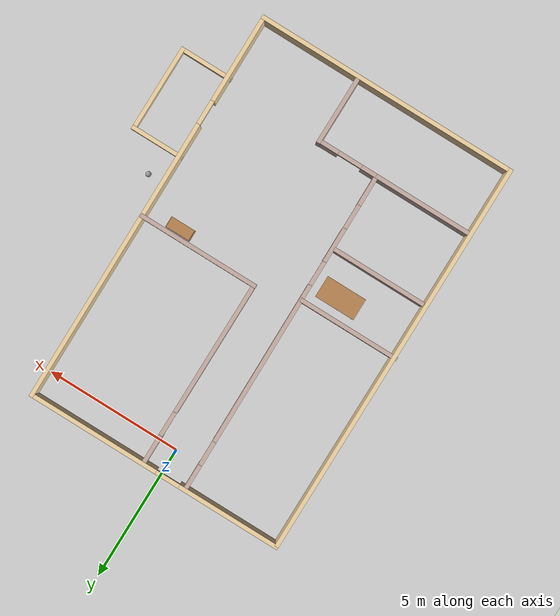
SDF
<sdf version="1.6">
 <world name="default">
  <model name="ground_plane">
   <static>1</static>
   <link name="link">
    <collision name="collision">
     <geometry><plane><normal>0 0 1</normal><size>100 100</size></plane></geometry>
     <surface>
      <contact><collide_bitmask>65535</collide_bitmask></contact>
      <friction><ode><mu>100</mu><mu2>50</mu2></ode></friction>
     </surface>
    </collision>
    <visual name="visual">
     <cast_shadows>0</cast_shadows>
     <geometry><plane><normal>0 0 1</normal><size>100 100</size></plane></geometry>
     <material>
      <script><uri>file://media/materials/scripts/gazebo.material</uri><name>Gazebo/Grey</name></script>
     </material>
    </visual>
   </link>
  </model>
  <model name="Building">
   <pose>1.19328 -6.44935 0 0 -0 0</pose>
   <link name="Wall_0">
    <collision name="Wall_0_Collision">
     <geometry><box><size>14.75 0.15 2.5</size></box></geometry>
     <pose>0 0 1.25 0 -0 0</pose>
    </collision>
    <visual name="Wall_0_Visual">
     <pose>0 0 1.25 0 -0 0</pose>
     <geometry><box><size>14.75 0.15 2.5</size></box></geometry>
     <material>
      <script><uri>file://media/materials/scripts/gazebo.material</uri><name>Gazebo/Grey</name></script>
      <ambient>0.921569 0.807843 0.615686 1</ambient>
     </material>
     <meta><layer>0</layer></meta>
    </visual>
    <pose>-5.70481 -0.037911 0 0 0 -1.5708</pose>
   </link>
   <link name="Wall_1">
    <collision name="Wall_1_Collision">
     <geometry><box><size>9.72533 0.15 2.5</size></box></geometry>
     <pose>0 0 1.25 0 -0 0</pose>
    </collision>
    <visual name="Wall_1_Visual">
     <pose>0 0 1.25 0 -0 0</pose>
     <geometry><box><size>9.72533 0.15 2.5</size></box></geometry>
     <material>
      <script><uri>file://media/materials/scripts/gazebo.material</uri><name>Gazebo/Grey</name></script>
      <ambient>0.921569 0.807843 0.615686 1</ambient>
     </material>
     <meta><layer>0</layer></meta>
    </visual>
    <pose>-0.870929 -7.33745 0 0 -0 9.7e-05</pose>
   </link>
   <link name="Wall_10">
    <collision name="Wall_10_Collision">
     <geometry><box><size>3.75 0.15 2.5</size></box></geometry>
     <pose>0 0 1.25 0 -0 0</pose>
    </collision>
    <visual name="Wall_10_Visual">
     <pose>0 0 1.25 0 -0 0</pose>
     <geometry><box><size>3.75 0.15 2.5</size></box></geometry>
     <material>
      <script><uri>file://media/materials/scripts/gazebo.material</uri><name>Gazebo/Grey</name></script>
      <ambient>0.760784 0.662745 0.627451 1</ambient>
     </material>
     <meta><layer>0</layer></meta>
    </visual>
    <pose>-3.88937 -4.84832 0 0 -0 3.14159</pose>
   </link>
   <link name="Wall_14">
    <collision name="Wall_14_Collision">
     <geometry><box><size>2.5 0.15 2.5</size></box></geometry>
     <pose>0 0 1.25 0 -0 0</pose>
    </collision>
    <visual name="Wall_14_Visual">
     <pose>0 0 1.25 0 -0 0</pose>
     <geometry><box><size>2.5 0.15 2.5</size></box></geometry>
     <material>
      <script><uri>file://media/materials/scripts/gazebo.material</uri><name>Gazebo/Grey</name></script>
      <ambient>0.760784 0.662745 0.627451 1</ambient>
     </material>
     <meta><layer>0</layer></meta>
    </visual>
    <pose>0.19415 -6.01042 0 0 0 -1.5708</pose>
   </link>
   <link name="Wall_16">
    <collision name="Wall_16_Collision">
     <geometry><box><size>4.5 0.15 2.5</size></box></geometry>
     <pose>0 0 1.25 0 -0 0</pose>
    </collision>
    <visual name="Wall_16_Visual">
     <pose>0 0 1.25 0 -0 0</pose>
     <geometry><box><size>4.5 0.15 2.5</size></box></geometry>
     <material>
      <script><uri>file://media/materials/scripts/gazebo.material</uri><name>Gazebo/Grey</name></script>
      <ambient>0.760784 0.662745 0.627451 1</ambient>
     </material>
     <meta><layer>0</layer></meta>
    </visual>
    <pose>1.67785 0.374679 0 0 -0 0</pose>
   </link>
   <link name="Wall_18">
    <collision name="Wall_18_Collision">
     <geometry><box><size>3.5 0.15 2.5</size></box></geometry>
     <pose>0 0 1.25 0 -0 0</pose>
    </collision>
    <visual name="Wall_18_Visual">
     <pose>0 0 1.25 0 -0 0</pose>
     <geometry><box><size>3.5 0.15 2.5</size></box></geometry>
     <material>
      <script><uri>file://media/materials/scripts/gazebo.material</uri><name>Gazebo/Grey</name></script>
      <ambient>0.760784 0.662745 0.627451 1</ambient>
     </material>
     <meta><layer>0</layer></meta>
    </visual>
    <pose>-3.86495 -2.05872 0 0 -0 3.14159</pose>
   </link>
   <link name="Wall_20">
    <collision name="Wall_20_Collision">
     <geometry><box><size>3.75 0.15 2.5</size></box></geometry>
     <pose>0 0 1.25 0 -0 0</pose>
    </collision>
    <visual name="Wall_20_Visual">
     <pose>0 0 1.25 0 -0 0</pose>
     <geometry><box><size>3.75 0.15 2.5</size></box></geometry>
     <material>
      <script><uri>file://media/materials/scripts/gazebo.material</uri><name>Gazebo/Grey</name></script>
      <ambient>0.760784 0.662745 0.627451 1</ambient>
     </material>
     <meta><layer>0</layer></meta>
    </visual>
    <pose>-3.93705 -0.048521 0 0 -0 3.14159</pose>
   </link>
   <link name="Wall_22">
    <pose>-0.991697 -4.84832 0 0 -0 0</pose>
    <visual name="Wall_22_Visual_0">
     <pose>-0.794379 0 1.25 0 -0 0</pose>
     <geometry><box><size>0.661242 0.15 2.5</size></box></geometry>
     <material>
      <script><uri>file://media/materials/scripts/gazebo.material</uri><name>Gazebo/Grey</name></script>
      <ambient>0.760784 0.662745 0.627451 1</ambient>
     </material>
     <meta><layer>0</layer></meta>
    </visual>
    <collision name="Wall_22_Collision_0">
     <geometry><box><size>0.661242 0.15 2.5</size></box></geometry>
     <pose>-0.794379 0 1.25 0 -0 0</pose>
    </collision>
    <visual name="Wall_22_Visual_1">
     <pose>0.780621 0 1.25 0 -0 0</pose>
     <geometry><box><size>0.688758 0.15 2.5</size></box></geometry>
     <material>
      <script><uri>file://media/materials/scripts/gazebo.material</uri><name>Gazebo/Grey</name></script>
      <ambient>0.760784 0.662745 0.627451 1</ambient>
     </material>
     <meta><layer>0</layer></meta>
    </visual>
    <collision name="Wall_22_Collision_1">
     <geometry><box><size>0.688758 0.15 2.5</size></box></geometry>
     <pose>0.780621 0 1.25 0 -0 0</pose>
    </collision>
    <visual name="Wall_22_Visual_2">
     <pose>-0.013758 0 2.25 0 -0 0</pose>
     <geometry><box><size>0.9 0.15 0.5</size></box></geometry>
     <material>
      <script><uri>file://media/materials/scripts/gazebo.material</uri><name>Gazebo/Grey</name></script>
      <ambient>0.760784 0.662745 0.627451 1</ambient>
     </material>
     <meta><layer>0</layer></meta>
    </visual>
    <collision name="Wall_22_Collision_2">
     <geometry><box><size>0.9 0.15 0.5</size></box></geometry>
     <pose>-0.013758 0 2.25 0 -0 0</pose>
    </collision>
   </link>
   <link name="Wall_24">
    <pose>-0.49715 3.79968 0 0 -0 1.5708</pose>
    <visual name="Wall_24_Visual_0">
     <pose>-0.98817 0 1.25 0 -0 0</pose>
     <geometry><box><size>5.02366 0.15 2.5</size></box></geometry>
     <material>
      <script><uri>file://media/materials/scripts/gazebo.material</uri><name>Gazebo/Grey</name></script>
      <ambient>0.760784 0.662745 0.627451 1</ambient>
     </material>
     <meta><layer>0</layer></meta>
    </visual>
    <collision name="Wall_24_Collision_0">
     <geometry><box><size>5.02366 0.15 2.5</size></box></geometry>
     <pose>-0.98817 0 1.25 0 -0 0</pose>
    </collision>
    <visual name="Wall_24_Visual_1">
     <pose>2.96183 0 1.25 0 -0 0</pose>
     <geometry><box><size>1.07634 0.15 2.5</size></box></geometry>
     <material>
      <script><uri>file://media/materials/scripts/gazebo.material</uri><name>Gazebo/Grey</name></script>
      <ambient>0.760784 0.662745 0.627451 1</ambient>
     </material>
     <meta><layer>0</layer></meta>
    </visual>
    <collision name="Wall_24_Collision_1">
     <geometry><box><size>1.07634 0.15 2.5</size></box></geometry>
     <pose>2.96183 0 1.25 0 -0 0</pose>
    </collision>
    <visual name="Wall_24_Visual_2">
     <pose>1.97366 0 2.25 0 -0 0</pose>
     <geometry><box><size>0.9 0.15 0.5</size></box></geometry>
     <material>
      <script><uri>file://media/materials/scripts/gazebo.material</uri><name>Gazebo/Grey</name></script>
      <ambient>0.760784 0.662745 0.627451 1</ambient>
     </material>
     <meta><layer>0</layer></meta>
    </visual>
    <collision name="Wall_24_Collision_2">
     <geometry><box><size>0.9 0.15 0.5</size></box></geometry>
     <pose>1.97366 0 2.25 0 -0 0</pose>
    </collision>
   </link>
   <link name="Wall_29">
    <pose>3.87687 0.000265 0 0 0 -1.56537</pose>
    <visual name="Wall_29_Visual_0">
     <pose>-2.10776 0 1.25 0 -0 0</pose>
     <geometry><box><size>10.6092 0.15 2.5</size></box></geometry>
     <material>
      <script><uri>file://media/materials/scripts/gazebo.material</uri><name>Gazebo/Grey</name></script>
      <ambient>0.921569 0.807843 0.615686 1</ambient>
     </material>
     <meta><layer>0</layer></meta>
    </visual>
    <collision name="Wall_29_Collision_0">
     <geometry><box><size>10.6092 0.15 2.5</size></box></geometry>
     <pose>-2.10776 0 1.25 0 -0 0</pose>
    </collision>
    <visual name="Wall_29_Visual_1">
     <pose>5.75459 0 1.25 0 -0 0</pose>
     <geometry><box><size>3.31552 0.15 2.5</size></box></geometry>
     <material>
      <script><uri>file://media/materials/scripts/gazebo.material</uri><name>Gazebo/Grey</name></script>
      <ambient>0.921569 0.807843 0.615686 1</ambient>
     </material>
     <meta><layer>0</layer></meta>
    </visual>
    <collision name="Wall_29_Collision_1">
     <geometry><box><size>3.31552 0.15 2.5</size></box></geometry>
     <pose>5.75459 0 1.25 0 -0 0</pose>
    </collision>
    <visual name="Wall_29_Visual_2">
     <pose>3.64683 0 2.25 0 -0 0</pose>
     <geometry><box><size>0.9 0.15 0.5</size></box></geometry>
     <material>
      <script><uri>file://media/materials/scripts/gazebo.material</uri><name>Gazebo/Grey</name></script>
      <ambient>0.921569 0.807843 0.615686 1</ambient>
     </material>
     <meta><layer>0</layer></meta>
    </visual>
    <collision name="Wall_29_Collision_2">
     <geometry><box><size>0.9 0.15 0.5</size></box></geometry>
     <pose>3.64683 0 2.25 0 -0 0</pose>
    </collision>
   </link>
   <link name="Wall_31">
    <collision name="Wall_31_Collision">
     <geometry><box><size>2 0.15 0.75</size></box></geometry>
     <pose>0 0 0.375 0 -0 0</pose>
    </collision>
    <visual name="Wall_31_Visual">
     <pose>0 0 0.375 0 -0 0</pose>
     <geometry><box><size>2 0.15 0.75</size></box></geometry>
     <material>
      <script><uri>file://media/materials/scripts/gazebo.material</uri><name>Gazebo/Grey</name></script>
      <ambient>0.921569 0.807843 0.615686 1</ambient>
     </material>
     <meta><layer>0</layer></meta>
    </visual>
    <pose>4.81205 -2.00149 0 0 -0 0</pose>
   </link>
   <link name="Wall_32">
    <collision name="Wall_32_Collision">
     <geometry><box><size>3.25 0.15 0.75</size></box></geometry>
     <pose>0 0 0.375 0 -0 0</pose>
    </collision>
    <visual name="Wall_32_Visual">
     <pose>0 0 0.375 0 -0 0</pose>
     <geometry><box><size>3.25 0.15 0.75</size></box></geometry>
     <material>
      <script><uri>file://media/materials/scripts/gazebo.material</uri><name>Gazebo/Grey</name></script>
      <ambient>0.921569 0.807843 0.615686 1</ambient>
     </material>
     <meta><layer>0</layer></meta>
    </visual>
    <pose>5.73705 -3.55149 0 0 0 -1.5708</pose>
   </link>
   <link name="Wall_33">
    <collision name="Wall_33_Collision">
     <geometry><box><size>2 0.15 0.75</size></box></geometry>
     <pose>0 0 0.375 0 -0 0</pose>
    </collision>
    <visual name="Wall_33_Visual">
     <pose>0 0 0.375 0 -0 0</pose>
     <geometry><box><size>2 0.15 0.75</size></box></geometry>
     <material>
      <script><uri>file://media/materials/scripts/gazebo.material</uri><name>Gazebo/Grey</name></script>
      <ambient>0.921569 0.807843 0.615686 1</ambient>
     </material>
     <meta><layer>0</layer></meta>
    </visual>
    <pose>4.81205 -5.10149 0 0 -0 3.14159</pose>
   </link>
   <link name="Wall_7">
    <pose>-0.93145 7.33751 0 0 -0 3.14159</pose>
    <visual name="Wall_7_Visual_0">
     <pose>-2.38427 0 1.25 0 -0 0</pose>
     <geometry><box><size>4.91846 0.15 2.5</size></box></geometry>
     <material>
      <script><uri>file://media/materials/scripts/gazebo.material</uri><name>Gazebo/Grey</name></script>
      <ambient>0.921569 0.807843 0.615686 1</ambient>
     </material>
     <meta><layer>0</layer></meta>
    </visual>
    <collision name="Wall_7_Collision_0">
     <geometry><box><size>4.91846 0.15 2.5</size></box></geometry>
     <pose>-2.38427 0 1.25 0 -0 0</pose>
    </collision>
    <visual name="Wall_7_Visual_1">
     <pose>2.90923 0 1.25 0 -0 0</pose>
     <geometry><box><size>3.86854 0.15 2.5</size></box></geometry>
     <material>
      <script><uri>file://media/materials/scripts/gazebo.material</uri><name>Gazebo/Grey</name></script>
      <ambient>0.921569 0.807843 0.615686 1</ambient>
     </material>
     <meta><layer>0</layer></meta>
    </visual>
    <collision name="Wall_7_Collision_1">
     <geometry><box><size>3.86854 0.15 2.5</size></box></geometry>
     <pose>2.90923 0 1.25 0 -0 0</pose>
    </collision>
    <visual name="Wall_7_Visual_2">
     <pose>0.524956 0 2.25 0 -0 0</pose>
     <geometry><box><size>0.9 0.15 0.5</size></box></geometry>
     <material>
      <script><uri>file://media/materials/scripts/gazebo.material</uri><name>Gazebo/Grey</name></script>
      <ambient>0.921569 0.807843 0.615686 1</ambient>
     </material>
     <meta><layer>0</layer></meta>
    </visual>
    <collision name="Wall_7_Collision_2">
     <geometry><box><size>0.9 0.15 0.5</size></box></geometry>
     <pose>0.524956 0 2.25 0 -0 0</pose>
    </collision>
   </link>
   <link name="Wall_9">
    <pose>-2.08937 1.20168 0 0 0 -1.56292</pose>
    <visual name="Wall_9_Visual_0">
     <pose>-5.6461 0 1.25 0 -0 0</pose>
     <geometry><box><size>0.957792 0.15 2.5</size></box></geometry>
     <material>
      <script><uri>file://media/materials/scripts/gazebo.material</uri><name>Gazebo/Grey</name></script>
      <ambient>0.760784 0.662745 0.627451 1</ambient>
     </material>
     <meta><layer>0</layer></meta>
    </visual>
    <collision name="Wall_9_Collision_0">
     <geometry><box><size>0.957792 0.15 2.5</size></box></geometry>
     <pose>-5.6461 0 1.25 0 -0 0</pose>
    </collision>
    <visual name="Wall_9_Visual_1">
     <pose>-1.21814 0 1.25 0 -0 0</pose>
     <geometry><box><size>6.09813 0.15 2.5</size></box></geometry>
     <material>
      <script><uri>file://media/materials/scripts/gazebo.material</uri><name>Gazebo/Grey</name></script>
      <ambient>0.760784 0.662745 0.627451 1</ambient>
     </material>
     <meta><layer>0</layer></meta>
    </visual>
    <collision name="Wall_9_Collision_1">
     <geometry><box><size>6.09813 0.15 2.5</size></box></geometry>
     <pose>-1.21814 0 1.25 0 -0 0</pose>
    </collision>
    <visual name="Wall_9_Visual_2">
     <pose>3.37888 0 1.25 0 -0 0</pose>
     <geometry><box><size>1.29592 0.15 2.5</size></box></geometry>
     <material>
      <script><uri>file://media/materials/scripts/gazebo.material</uri><name>Gazebo/Grey</name></script>
      <ambient>0.760784 0.662745 0.627451 1</ambient>
     </material>
     <meta><layer>0</layer></meta>
    </visual>
    <collision name="Wall_9_Collision_2">
     <geometry><box><size>1.29592 0.15 2.5</size></box></geometry>
     <pose>3.37888 0 1.25 0 -0 0</pose>
    </collision>
    <visual name="Wall_9_Visual_3">
     <pose>5.52592 0 1.25 0 -0 0</pose>
     <geometry><box><size>1.19816 0.15 2.5</size></box></geometry>
     <material>
      <script><uri>file://media/materials/scripts/gazebo.material</uri><name>Gazebo/Grey</name></script>
      <ambient>0.760784 0.662745 0.627451 1</ambient>
     </material>
     <meta><layer>0</layer></meta>
    </visual>
    <collision name="Wall_9_Collision_3">
     <geometry><box><size>1.19816 0.15 2.5</size></box></geometry>
     <pose>5.52592 0 1.25 0 -0 0</pose>
    </collision>
    <visual name="Wall_9_Visual_4">
     <pose>-4.71721 0 2.25 0 -0 0</pose>
     <geometry><box><size>0.9 0.15 0.5</size></box></geometry>
     <material>
      <script><uri>file://media/materials/scripts/gazebo.material</uri><name>Gazebo/Grey</name></script>
      <ambient>0.760784 0.662745 0.627451 1</ambient>
     </material>
     <meta><layer>0</layer></meta>
    </visual>
    <collision name="Wall_9_Collision_4">
     <geometry><box><size>0.9 0.15 0.5</size></box></geometry>
     <pose>-4.71721 0 2.25 0 -0 0</pose>
    </collision>
    <visual name="Wall_9_Visual_5">
     <pose>2.28092 0 2.25 0 -0 0</pose>
     <geometry><box><size>0.9 0.15 0.5</size></box></geometry>
     <material>
      <script><uri>file://media/materials/scripts/gazebo.material</uri><name>Gazebo/Grey</name></script>
      <ambient>0.760784 0.662745 0.627451 1</ambient>
     </material>
     <meta><layer>0</layer></meta>
    </visual>
    <collision name="Wall_9_Collision_5">
     <geometry><box><size>0.9 0.15 0.5</size></box></geometry>
     <pose>2.28092 0 2.25 0 -0 0</pose>
    </collision>
    <visual name="Wall_9_Visual_6">
     <pose>4.47684 0 2.25 0 -0 0</pose>
     <geometry><box><size>0.9 0.15 0.5</size></box></geometry>
     <material>
      <script><uri>file://media/materials/scripts/gazebo.material</uri><name>Gazebo/Grey</name></script>
      <ambient>0.760784 0.662745 0.627451 1</ambient>
     </material>
     <meta><layer>0</layer></meta>
    </visual>
    <collision name="Wall_9_Collision_6">
     <geometry><box><size>0.9 0.15 0.5</size></box></geometry>
     <pose>4.47684 0 2.25 0 -0 0</pose>
    </collision>
   </link>
   <static>1</static>
  </model>
  <model name="table">
   <static>1</static>
   <link name="link">
    <collision name="surface">
     <pose>0 0 1 0 -0 0</pose>
     <geometry><box><size>1.5 0.8 0.03</size></box></geometry>
     <surface><friction><ode><mu>0.6</mu><mu2>0.6</mu2></ode></friction></surface>
    </collision>
    <visual name="visual1">
     <pose>0 0 1 0 -0 0</pose>
     <geometry><box><size>1.5 0.8 0.03</size></box></geometry>
     <material>
      <script><uri>file://media/materials/scripts/gazebo.material</uri><name>Gazebo/Wood</name></script>
     </material>
    </visual>
    <collision name="front_left_leg">
     <pose>0.68 0.38 0.5 0 -0 0</pose>
     <geometry><cylinder><radius>0.02</radius><length>1</length></cylinder></geometry>
    </collision>
    <visual name="front_left_leg">
     <pose>0.68 0.38 0.5 0 -0 0</pose>
     <geometry><cylinder><radius>0.02</radius><length>1</length></cylinder></geometry>
     <material>
      <script><uri>file://media/materials/scripts/gazebo.material</uri><name>Gazebo/Grey</name></script>
     </material>
    </visual>
    <collision name="front_right_leg">
     <pose>0.68 -0.38 0.5 0 -0 0</pose>
     <geometry><cylinder><radius>0.02</radius><length>1</length></cylinder></geometry>
    </collision>
    <visual name="front_right_leg">
     <pose>0.68 -0.38 0.5 0 -0 0</pose>
     <geometry><cylinder><radius>0.02</radius><length>1</length></cylinder></geometry>
     <material>
      <script><uri>file://media/materials/scripts/gazebo.material</uri><name>Gazebo/Grey</name></script>
     </material>
    </visual>
    <collision name="back_right_leg">
     <pose>-0.68 -0.38 0.5 0 -0 0</pose>
     <geometry><cylinder><radius>0.02</radius><length>1</length></cylinder></geometry>
    </collision>
    <visual name="back_right_leg">
     <pose>-0.68 -0.38 0.5 0 -0 0</pose>
     <geometry><cylinder><radius>0.02</radius><length>1</length></cylinder></geometry>
     <material>
      <script><uri>file://media/materials/scripts/gazebo.material</uri><name>Gazebo/Grey</name></script>
     </material>
    </visual>
    <collision name="back_left_leg">
     <pose>-0.68 0.38 0.5 0 -0 0</pose>
     <geometry><cylinder><radius>0.02</radius><length>1</length></cylinder></geometry>
    </collision>
    <visual name="back_left_leg">
     <pose>-0.68 0.38 0.5 0 -0 0</pose>
     <geometry><cylinder><radius>0.02</radius><length>1</length></cylinder></geometry>
     <material>
      <script><uri>file://media/materials/scripts/gazebo.material</uri><name>Gazebo/Grey</name></script>
     </material>
    </visual>
   </link>
   <pose>-1.98426 -7.25701 0 0 -0 0</pose>
  </model>
  <model name="bookshelf">
   <static>1</static>
   <link name="link">
    <inertial><mass>1</mass></inertial>
    <collision name="back">
     <pose>0 0.005 0.6 0 -0 0</pose>
     <geometry><box><size>0.9 0.01 1.2</size></box></geometry>
    </collision>
    <visual name="visual1">
     <pose>0 0.005 0.6 0 -0 0</pose>
     <geometry><box><size>0.9 0.01 1.2</size></box></geometry>
     <material>
      <script><uri>file://media/materials/scripts/gazebo.material</uri><name>Gazebo/Wood</name></script>
     </material>
    </visual>
    <collision name="left_side">
     <pose>0.45 -0.195 0.6 0 -0 0</pose>
     <geometry><box><size>0.02 0.4 1.2</size></box></geometry>
    </collision>
    <visual name="visual2">
     <pose>0.45 -0.195 0.6 0 -0 0</pose>
     <geometry><box><size>0.02 0.4 1.2</size></box></geometry>
     <material>
      <script><uri>file://media/materials/scripts/gazebo.material</uri><name>Gazebo/Wood</name></script>
     </material>
    </visual>
    <collision name="right_side">
     <pose>-0.45 -0.195 0.6 0 -0 0</pose>
     <geometry><box><size>0.02 0.4 1.2</size></box></geometry>
    </collision>
    <visual name="visual3">
     <pose>-0.45 -0.195 0.6 0 -0 0</pose>
     <geometry><box><size>0.02 0.4 1.2</size></box></geometry>
     <material>
      <script><uri>file://media/materials/scripts/gazebo.material</uri><name>Gazebo/Wood</name></script>
     </material>
    </visual>
    <collision name="bottom">
     <pose>0 -0.195 0.03 0 -0 0</pose>
     <geometry><box><size>0.88 0.4 0.06</size></box></geometry>
    </collision>
    <visual name="visual4">
     <pose>0 -0.195 0.03 0 -0 0</pose>
     <geometry><box><size>0.88 0.4 0.06</size></box></geometry>
     <material>
      <script><uri>file://media/materials/scripts/gazebo.material</uri><name>Gazebo/Wood</name></script>
     </material>
    </visual>
    <collision name="top">
     <pose>0 -0.195 1.19 0 -0 0</pose>
     <geometry><box><size>0.88 0.4 0.02</size></box></geometry>
    </collision>
    <visual name="visual5">
     <pose>0 -0.195 1.19 0 -0 0</pose>
     <geometry><box><size>0.88 0.4 0.02</size></box></geometry>
     <material>
      <script><uri>file://media/materials/scripts/gazebo.material</uri><name>Gazebo/Wood</name></script>
     </material>
    </visual>
    <collision name="low_shelf">
     <pose>0 -0.195 0.43 0 -0 0</pose>
     <geometry><box><size>0.88 0.4 0.02</size></box></geometry>
    </collision>
    <visual name="visual6">
     <pose>0 -0.195 0.43 0 -0 0</pose>
     <geometry><box><size>0.88 0.4 0.02</size></box></geometry>
     <material>
      <script><uri>file://media/materials/scripts/gazebo.material</uri><name>Gazebo/Wood</name></script>
     </material>
    </visual>
    <collision name="high_shelf">
     <pose>0 -0.195 0.8 0 -0 0</pose>
     <geometry><box><size>0.88 0.4 0.02</size></box></geometry>
    </collision>
    <visual name="visual7">
     <pose>0 -0.195 0.8 0 -0 0</pose>
     <geometry><box><size>0.88 0.4 0.02</size></box></geometry>
     <material>
      <script><uri>file://media/materials/scripts/gazebo.material</uri><name>Gazebo/Wood</name></script>
     </material>
    </visual>
   </link>
   <pose>3.80123 -6.19695 0 0 -0 0</pose>
  </model>
  <model name="my_ball">
   <link name="link_0">
    <inertial>
     <mass>1</mass>
     <inertia><ixx>0.1</ixx><ixy>0</ixy><ixz>0</ixz><iyy>0.1</iyy><iyz>0</iyz><izz>0.1</izz></inertia>
    </inertial>
    <visual name="visual">
     <geometry><sphere><radius>0.1</radius></sphere></geometry>
     <material>
      <lighting>1</lighting>
      <script><uri>file://media/materials/scripts/gazebo.material</uri><name>Gazebo/Grey</name></script>
      <shader type="pixel"><normal_map>__default__</normal_map></shader>
      <ambient>1 1 1 1</ambient>
      <diffuse>1 1 1 1</diffuse>
      <specular>1 1 1 1</specular>
      <emissive>1 1 1 1</emissive>
     </material>
    </visual>
    <collision name="collision">
     <geometry><sphere><radius>0.1</radius></sphere></geometry>
     <surface>
      <friction>
       <ode><mu>1</mu><mu2>1</mu2><fdir1>0 0 0</fdir1><slip1>0</slip1><slip2>0</slip2></ode>
       <torsional>
        <coefficient>1</coefficient>
        <patch_radius>0</patch_radius>
        <surface_radius>0</surface_radius>
        <use_patch_radius>1</use_patch_radius>
        <ode><slip>0</slip></ode>
       </torsional>
      </friction>
      <bounce><restitution_coefficient>0</restitution_coefficient><threshold>1e+06</threshold></bounce>
      <contact>
       <collide_without_contact>0</collide_without_contact>
       <collide_without_contact_bitmask>1</collide_without_contact_bitmask>
       <collide_bitmask>1</collide_bitmask>
       <ode>
        <soft_cfm>0</soft_cfm>
        <soft_erp>0.2</soft_erp>
        <kp>1e+13</kp>
        <kd>1</kd>
        <max_vel>0.01</max_vel>
        <min_depth>0</min_depth>
       </ode>
       <bullet>
        <split_impulse>1</split_impulse>
        <split_impulse_penetration_threshold>-0.01</split_impulse_penetration_threshold>
        <soft_cfm>0</soft_cfm>
        <soft_erp>0.2</soft_erp>
        <kp>1e+13</kp>
        <kd>1</kd>
       </bullet>
      </contact>
     </surface>
    </collision>
   </link>
   <static>0</static>
   <pose>5.71555 -7.39638 0.1 0 -0 0</pose>
  </model>
 </world>
</sdf>
